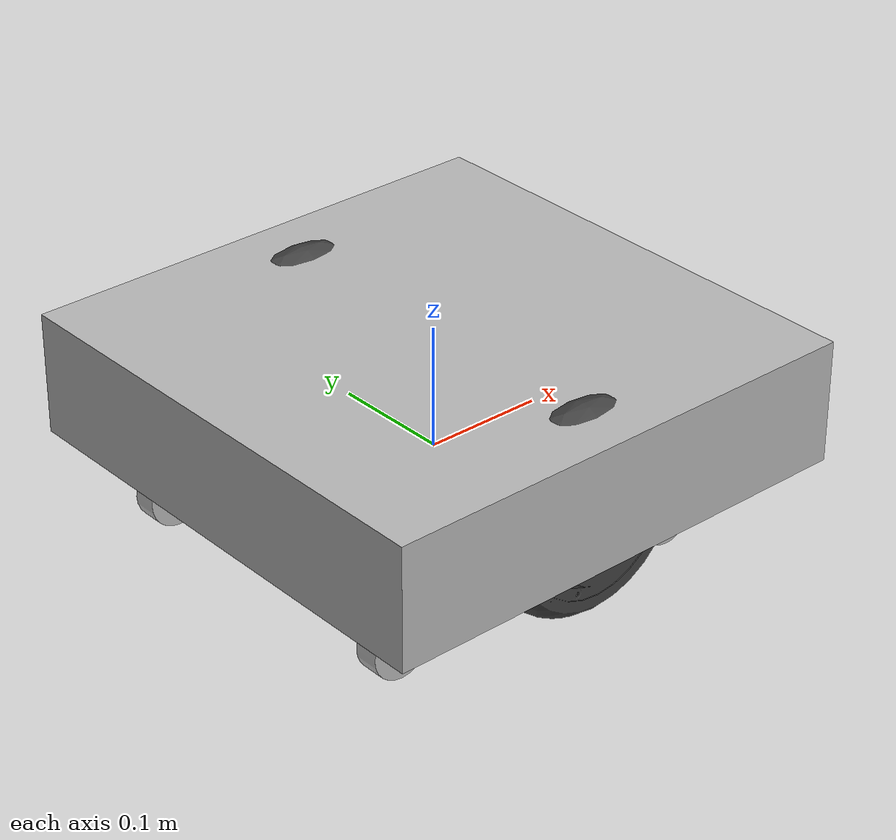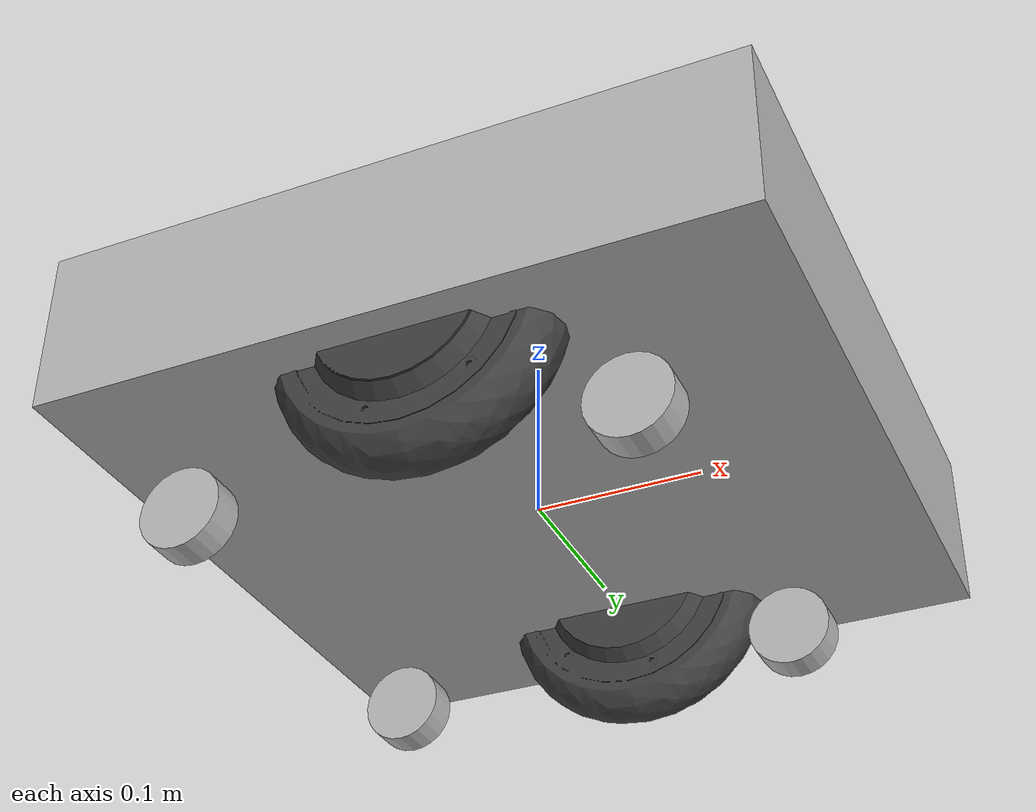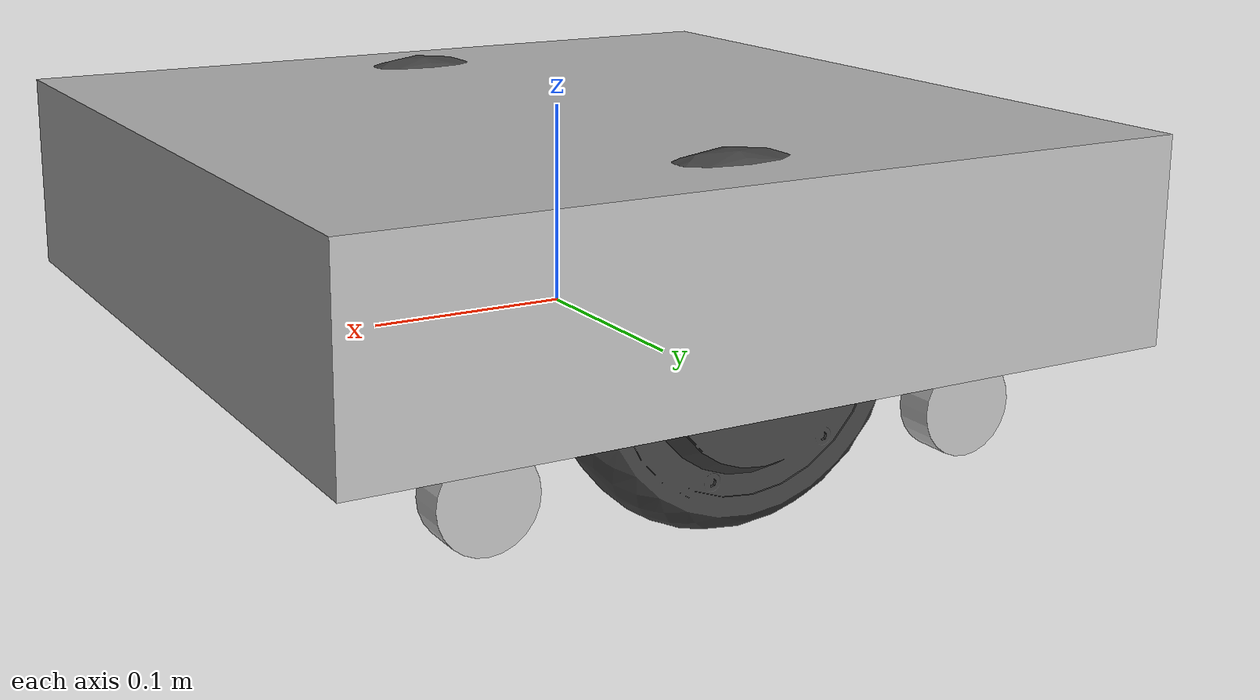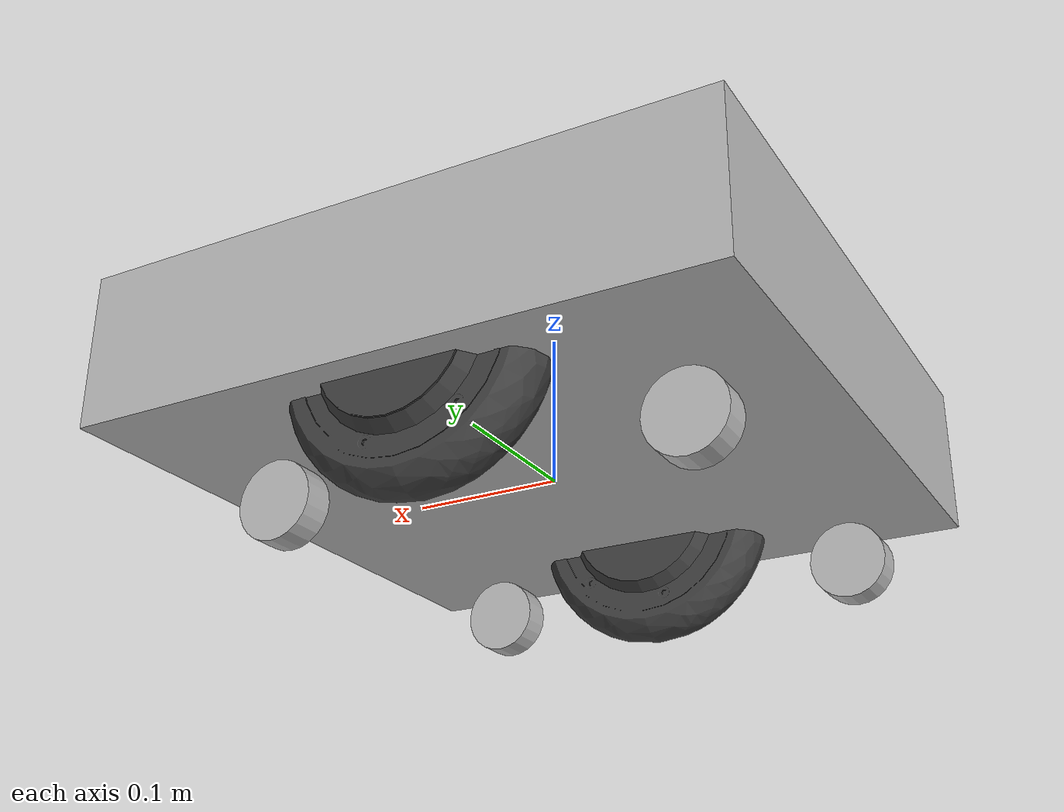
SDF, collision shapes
<?xml version="1.0"?>
<sdf version='1.6'>
    <model name='clober'>

        <link name="base_link">
            <visual name='visual'>
                <pose>0 0 0 0 0 1.5707963267948966</pose>
                <geometry>
                    <mesh>
                        <uri>model://clober/meshes/clober.dae</uri>
                    </mesh>
                </geometry>
            </visual>

            <collision name="base_collision">
                <pose>0 0 0.05 0 0 1.5707963267948966</pose>
                <geometry>
                    <box>
                        <size>0.41 0.41 0.1</size>
                    </box>
                </geometry>
            </collision>

            <inertial>
                <pose>0 0 0 0 0 0</pose>
                <mass>30</mass>
                <inertia>
                    <ixx>2.2124416e-03</ixx>
                    <ixy>-1.2294101e-05</ixy>
                    <ixz>3.4938785e-05</ixz>
                    <iyy>2.1193702e-03</iyy>
                    <iyz>-5.0120904e-06</iyz>
                    <izz>2.0064271e-03</izz>
                </inertia>
            </inertial>
        </link>

        <joint name="left_wheel_joint" type="revolute">
            <parent>base_link</parent>
            <child>left_wheel_link</child>
            <pose>0.0018 0.1558 0.02 -1.5707963267948966 0 0</pose>
            <axis>
                <xyz> 0 1 0 </xyz>
                <dynamics>
                    <friction> 1 </friction>
                    <damping> 1 </damping>
                    <spring_reference> 0 </spring_reference>
                    <spring_stiffness> 0 </spring_stiffness>
                </dynamics>
                <use_parent_model_frame> 1 </use_parent_model_frame>
            </axis>
        </joint>

        <joint name="right_wheel_joint" type="revolute">
            <parent>base_link</parent>
            <child>right_wheel_link</child>
            <pose>0.0018 -0.1558 0.02 -1.5707963267948966 0 0</pose>
            <axis>
                <xyz> 0 1 0 </xyz>
                <dynamics>
                    <friction> 1 </friction>
                    <damping> 1 </damping>
                    <spring_reference> 0 </spring_reference>
                    <spring_stiffness> 0 </spring_stiffness>
                </dynamics>
                <use_parent_model_frame> 1 </use_parent_model_frame>
            </axis>
        </joint>

        <link name="left_wheel_link">
            <visual name='visual'>
                <pose>0.0018 0.1558 0.02 0 0 -1.5707963267948966</pose>
                <geometry>
                    <mesh>
                        <uri>model://clober/meshes/wheel.dae</uri>
                    </mesh>
                </geometry>
            </visual>
            <collision name='left_wheel_link_collision'>
                <pose>0.0018 0.1558 0.02 0 0 -1.5707963267948966</pose>
                <geometry>
                    <mesh>
                        <uri>model://clober/meshes/wheel.dae</uri>
                    </mesh>
                </geometry>
                <surface>
                    <friction>
                        <ode>
                            <mu> 1 </mu>
                            <mu2> 1 </mu2>
                        </ode>
                    </friction>
                    <contact>
                        <ode>
                            <kp> 100000 </kp>
                            <kd> 1000 </kd>
                            <max_vel> 0.1 </max_vel>
                            <min_depth> 0.0001 </min_depth>
                        </ode>
                    </contact>
                </surface>
            </collision>

            <inertial>
                <pose>0.0018 0.1558 0.02 0 0 -1.5707963267948966</pose>
                <mass>2.8498940e-02</mass>
                <inertia>
                    <ixx>1.1175580e-05</ixx>
                    <ixy>-4.2369783e-11</ixy>
                    <ixz>-5.9381719e-09</ixz>
                    <iyy>1.1192413e-05</iyy>
                    <iyz>-1.4400107e-11</iyz>
                    <izz>2.0712558e-05</izz>
                </inertia>
            </inertial>
        </link>

        <link name="right_wheel_link">
            <visual name='visual'>
                <pose>0.0018 -0.1558 0.02 0 0 1.5707963267948966</pose>
                <geometry>
                    <mesh>
                        <uri>model://clober/meshes/wheel.dae</uri>
                    </mesh>
                </geometry>
            </visual>
            <collision name='right_wheel_link_collision'>
                <pose>0.0018 -0.1558 0.02 0 0 1.5707963267948966</pose>
                <geometry>
                    <mesh>
                        <uri>model://clober/meshes/wheel.dae</uri>
                    </mesh>
                </geometry>
                <surface>
                    <friction>
                        <ode>
                            <mu> 1 </mu>
                            <mu2> 1 </mu2>
                        </ode>
                    </friction>
                    <contact>
                        <ode>
                            <kp> 100000 </kp>
                            <kd> 1000 </kd>
                            <max_vel> 0.1 </max_vel>
                            <min_depth> 0.0001 </min_depth>
                        </ode>
                    </contact>
                </surface>
            </collision>
            <inertial>
                <pose>0.0018 -0.1558 0.02 0 0 1.5707963267948966</pose>
                <mass>2.8498940e-02</mass>
                <inertia>
                    <ixx>1.1175580e-05</ixx>
                    <ixy>-4.2369783e-11</ixy>
                    <ixz>-5.9381719e-09</ixz>
                    <iyy>1.1192413e-05</iyy>
                    <iyz>-1.4400107e-11</iyz>
                    <izz>2.0712558e-05</izz>
                </inertia>
            </inertial>
        </link>

        <joint name="lidar_joint" type="fixed">
            <parent>base_link</parent>
            <child>laser_link</child>
            <pose>0.159 0 0.1565 3.1415926535897931 0 0</pose>
        </joint>

        <link name="laser_link">
            <visual name="lidar_sensor_visual">
                <pose>0.159 0 0.1565 3.1415926535897931 0 0</pose>
                <geometry>
                    <mesh>
                        <uri>model://clober/meshes/include/tim571.stl</uri>
                    </mesh>
                </geometry>
            </visual>
            <sensor name="tim_571" type="ray">
                <always_on>true</always_on>
                <visualize>true</visualize>
                <pose>0.159 0 0.1565 0 0 0</pose>
                <update_rate>20</update_rate>
                <ray>
                    <scan>
                        <horizontal>
                            <samples>720</samples>
                            <resolution>0.25</resolution>
                            <min_angle>-1.5707963267948966</min_angle>
                            <max_angle>1.5707963267948966</max_angle>
                        </horizontal>
                    </scan>
                    <range>
                        <min>0.05</min>
                        <max>25.0</max>
                        <resolution>0.015000</resolution>
                    </range>
                    <noise>
                        <type>gaussian</type>
                        <mean>0.0</mean>
                        <stddev>0.01</stddev>
                    </noise>
                </ray>
                <plugin name="clober_lidar" filename="libgazebo_ros_ray_sensor.so">
                    <ros>
                        <remapping>~/out:=scan</remapping>
                    </ros>
                    <output_type>sensor_msgs/LaserScan</output_type>
                    <frame_name>laser_link</frame_name>
                </plugin>
            </sensor>
        </link>

        <joint name="caster_joint1" type="revolute">
            <parent>base_link</parent>
            <child>caster_link1</child>
            <pose>0.11 0.13 -0.04 1.5707963267948966 0 0</pose>
            <axis>
                <xyz> 0 1 0 </xyz>
                <dynamics>
                    <friction> 0.1 </friction>
                    <damping> 0.1 </damping>
                    <spring_reference> 0 </spring_reference>
                    <spring_stiffness> 0 </spring_stiffness>
                </dynamics>
                <use_parent_model_frame> 1 </use_parent_model_frame>
            </axis>
        </joint>

        <link name="caster_link1">
            <collision name="caster_link1_collision">
                <pose>0.11 0.13 -0.04 1.5707963267948966 0 0</pose>
                <geometry>
                    <cylinder>
                        <radius>0.025</radius>
                        <length>0.02</length>
                    </cylinder>
                </geometry>
                <surface>
                    <friction>
                        <ode>
                            <mu> 1 </mu>
                            <mu2> 1 </mu2>
                        </ode>
                    </friction>
                    <contact>
                        <ode>
                            <kp> 100000 </kp>
                            <kd> 1000 </kd>
                            <max_vel> 0.1 </max_vel>
                            <min_depth> 0.0001 </min_depth>
                        </ode>
                    </contact>
                </surface>
            </collision>
            <inertial>
                <pose>0.11 0.13 -0.04 1.5707963267948966 0 0</pose>
                <mass>0.005</mass>
                <inertia>
                    <ixx>0.001</ixx>
                    <ixy>0.0</ixy>
                    <ixz>0.0</ixz>
                    <iyy>0.001</iyy>
                    <iyz>0.0</iyz>
                    <izz>0.001</izz>
                </inertia>
            </inertial>
        </link>

        <joint name="caster_joint2" type="revolute">
            <parent>base_link</parent>
            <child>caster_link2</child>
            <pose>-0.15 0.13 -0.04 1.5707963267948966 0 0</pose>
            <axis>
                <xyz> 0 1 0 </xyz>
                <dynamics>
                    <friction> 0.1 </friction>
                    <damping> 0.1 </damping>
                    <spring_reference> 0 </spring_reference>
                    <spring_stiffness> 0 </spring_stiffness>
                </dynamics>
                <use_parent_model_frame> 1 </use_parent_model_frame>
            </axis>
        </joint>

        <link name="caster_link2">
            <collision name="caster_link2_collision">
                <pose>-0.15 0.13 -0.04 1.5707963267948966 0 0</pose>
                <geometry>
                    <cylinder>
                        <radius>0.025</radius>
                        <length>0.02</length>
                    </cylinder>
                </geometry>
                <surface>
                    <friction>
                        <ode>
                            <mu> 1 </mu>
                            <mu2> 1 </mu2>
                        </ode>
                    </friction>
                    <contact>
                        <ode>
                            <kp> 100000 </kp>
                            <kd> 1000 </kd>
                            <max_vel> 0.1 </max_vel>
                            <min_depth> 0.0001 </min_depth>
                        </ode>
                    </contact>
                </surface>
            </collision>

            <inertial>
                <pose>-0.15 0.13 -0.04 1.5707963267948966 0 0</pose>
                <mass>0.005</mass>
                <inertia>
                    <ixx>0.001</ixx>
                    <ixy>0.0</ixy>
                    <ixz>0.0</ixz>
                    <iyy>0.001</iyy>
                    <iyz>0.0</iyz>
                    <izz>0.001</izz>
                </inertia>
            </inertial>
        </link>

        <joint name="caster_joint3" type="revolute">
            <parent>base_link</parent>
            <child>caster_link3</child>
            <pose>0.11 -0.13 -0.04 1.5707963267948966 0 0</pose>
            <axis>
                <xyz> 0 1 0 </xyz>
                <dynamics>
                    <friction> 0.1 </friction>
                    <damping> 0.1 </damping>
                    <spring_reference> 0 </spring_reference>
                    <spring_stiffness> 0 </spring_stiffness>
                </dynamics>
                <use_parent_model_frame> 1 </use_parent_model_frame>
            </axis>
        </joint>

        <link name="caster_link3">
            <collision name="caster_link3_collision">
                <pose>0.11 -0.13 -0.04 1.5707963267948966 0 0</pose>
                <geometry>
                    <cylinder>
                        <radius>0.025</radius>
                        <length>0.02</length>
                    </cylinder>
                </geometry>
                <surface>
                    <friction>
                        <ode>
                            <mu> 1 </mu>
                            <mu2> 1 </mu2>
                        </ode>
                    </friction>
                    <contact>
                        <ode>
                            <kp> 100000 </kp>
                            <kd> 1000 </kd>
                            <max_vel> 0.1 </max_vel>
                            <min_depth> 0.0001 </min_depth>
                        </ode>
                    </contact>
                </surface>
            </collision>

            <inertial>
                <pose>0.11 -0.13 -0.04 1.5707963267948966 0 0</pose>
                <mass>0.005</mass>
                <inertia>
                    <ixx>0.001</ixx>
                    <ixy>0.0</ixy>
                    <ixz>0.0</ixz>
                    <iyy>0.001</iyy>
                    <iyz>0.0</iyz>
                    <izz>0.001</izz>
                </inertia>

            </inertial>
        </link>

        <joint name="caster_joint4" type="revolute">

            <parent>base_link</parent>
            <child>caster_link4</child>
            <pose>-0.15 -0.13 -0.04 1.5707963267948966 0 0</pose>
            <axis>
                <xyz> 0 1 0 </xyz>
                <dynamics>
                    <friction> 0.1 </friction>
                    <damping> 0.1 </damping>
                    <spring_reference> 0 </spring_reference>
                    <spring_stiffness> 0 </spring_stiffness>
                </dynamics>
                <use_parent_model_frame> 1 </use_parent_model_frame>
            </axis>
        </joint>

        <link name="caster_link4">
            <collision name="caster_link4_collision">
                <pose>-0.15 -0.13 -0.04 1.5707963267948966 0 0</pose>
                <geometry>
                    <cylinder>
                        <radius>0.025</radius>
                        <length>0.02</length>
                    </cylinder>
                </geometry>
                <surface>
                    <friction>
                        <ode>
                            <mu> 1 </mu>
                            <mu2> 1 </mu2>
                        </ode>
                    </friction>
                    <contact>
                        <ode>
                            <kp> 100000 </kp>
                            <kd> 1000 </kd>
                            <max_vel> 0.1 </max_vel>
                            <min_depth> 0.0001 </min_depth>
                        </ode>
                    </contact>
                </surface>
            </collision>

            <inertial>
                <pose>-0.15 -0.13 -0.04 1.5707963267948966 0 0</pose>
                <mass>0.005</mass>
                <inertia>
                    <ixx>0.001</ixx>
                    <ixy>0.0</ixy>
                    <ixz>0.0</ixz>
                    <iyy>0.001</iyy>
                    <iyz>0.0</iyz>
                    <izz>0.001</izz>
                </inertia>

            </inertial>
        </link>

        <plugin name="clober_diff_drive" filename="libgazebo_ros_diff_drive.so">
            <update_rate>30</update_rate>

            <left_joint>left_wheel_joint</left_joint>
            <right_joint>right_wheel_joint</right_joint>

            <wheel_separation>0.310</wheel_separation>
            <wheel_diameter>0.17</wheel_diameter>

            <max_wheel_torque>20</max_wheel_torque>
            <max_wheel_acceleration>1.0</max_wheel_acceleration>

            <command_topic>cmd_vel</command_topic>

            <publish_odom>true</publish_odom>
            <publish_odom_tf>true</publish_odom_tf>
            <publish_wheel_tf>false</publish_wheel_tf>

            <odometry_topic>odom</odometry_topic>
            <odometry_frame>odom</odometry_frame>
            <robot_base_frame>base_link</robot_base_frame>
        </plugin>

        <plugin
            name="clober_joint_state"
            filename="libgazebo_ros_joint_state_publisher.so">
            <ros>
                <remapping>~/out:=joint_states</remapping>
            </ros>
            <update_rate>30</update_rate>
            <joint_name>left_wheel_joint</joint_name>
            <joint_name>right_wheel_joint</joint_name>
        </plugin>

        <gazebo reference="base_link">
            <material>Gazebo/White</material>
        </gazebo>

        <gazebo reference="left_wheel_link">
            <mu1>0.1</mu1>
            <mu2>0.1</mu2>
            <kp>500000.0</kp>
            <kd>10.0</kd>
            <minDepth>0.001</minDepth>
            <maxVel>0.1</maxVel>
            <fdir1>1 0 0</fdir1>
            <material>Gazebo/FlatBlack</material>
        </gazebo>

        <gazebo reference="right_wheel_link">
            <mu1>0.1</mu1>
            <mu2>0.1</mu2>
            <kp>500000.0</kp>
            <kd>10.0</kd>
            <minDepth>0.001</minDepth>
            <maxVel>0.1</maxVel>
            <fdir1>1 0 0</fdir1>
            <material>Gazebo/FlatBlack</material>
        </gazebo>

        <gazebo reference="caster_link1">
            <mu1>0.05</mu1>
            <mu2>0.05</mu2>
            <kp>100000.0</kp>
            <kd>100.0</kd>
            <minDepth>0.001</minDepth>
            <maxVel>1.0</maxVel>
            <fdir1>1 0 0</fdir1>
            <material>Gazebo/FlatBlack</material>
        </gazebo>

        <gazebo reference="caster_link2">
            <mu1>0.05</mu1>
            <mu2>0.05</mu2>
            <kp>100000.0</kp>
            <kd>100.0</kd>
            <minDepth>0.001</minDepth>
            <maxVel>1.0</maxVel>
            <fdir1>1 0 0</fdir1>
            <material>Gazebo/FlatBlack</material>
        </gazebo>

        <gazebo reference="caster_link3">
            <mu1>0.05</mu1>
            <mu2>0.05</mu2>
            <kp>100000.0</kp>
            <kd>100.0</kd>
            <minDepth>0.001</minDepth>
            <maxVel>1.0</maxVel>
            <fdir1>1 0 0</fdir1>
            <material>Gazebo/FlatBlack</material>
        </gazebo>

        <gazebo reference="caster_link4">
            <mu1>0.05</mu1>
            <mu2>0.05</mu2>
            <kp>100000.0</kp>
            <kd>100.0</kd>
            <minDepth>0.001</minDepth>
            <maxVel>1.0</maxVel>
            <fdir1>1 0 0</fdir1>
            <material>Gazebo/FlatBlack</material>
        </gazebo>

    </model>
</sdf>
